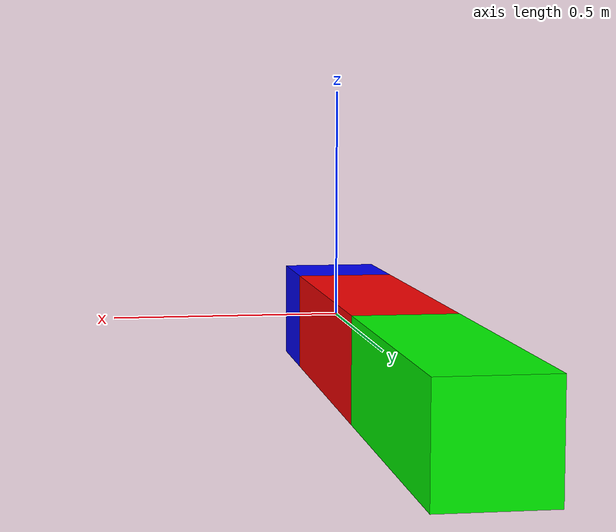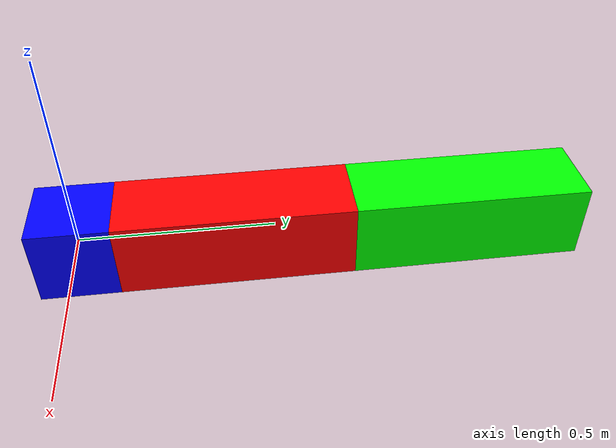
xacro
<?xml version="1.0"?>
<robot xmlns:xacro="http://www.ros.org/wiki/xacro" name="simple_robot">

    <material name="bright_red">
        <color rgba="1.0 0.0 0.0 1.0"/>
    </material>

    <material name="bright_green">
        <color rgba="0.0 1.0 0.0 1.0"/>
    </material>

    <material name="bright_blue">
        <color rgba="0.0 0.0 1.0 1.0"/>
    </material>

    <link name="base_link">
        <visual>
            <origin xyz="0 0 0" rpy="0 0 0"/>
            <geometry>
                <!-- cylinder radius="0.2" length="0.05"/ -->
                <box size="0.2 0.2 0.2"/>
            </geometry>
            <material name="bright_blue"/>
        </visual>
    </link>

    <!-- a zero size intermediate link -->
    <link name="moving_dummy_link">
    </link>

    <link name="moving_link">
        <visual>
            <origin xyz="0 0.3 0" rpy="0 0 0"/>
            <geometry>
                <box size="0.2 0.6 0.2"/>
            </geometry>
            <material name="bright_red"/>
        </visual>
    </link>

    <!-- a zero size intermediate link -->
    <link name="moving_dummy_link2">
    </link>

    <link name="moving_link2">
        <visual>
            <origin xyz="0 0.3 0" rpy="0 0 0"/>
            <geometry>
                <box size="0.2 0.6 0.2"/>
            </geometry>
            <material name="bright_green"/>
        </visual>
    </link>

    <joint name="joint_1_x" type="revolute">
        <parent link="base_link"/>
        <child link="moving_dummy_link"/>
        <origin xyz="0 0.1 0" rpy="0 0 0"/>
        <axis xyz="1 0 0"/>
        <limit lower="-3.14" upper="3.14" effort="10.0" velocity="1.0"/>
    </joint>

    <joint name="joint_1_z" type="revolute">
        <parent link="moving_dummy_link"/>
        <child link="moving_link"/>
        <origin xyz="0 0 0" rpy="0 0 0"/>
        <axis xyz="0 0 1"/>
        <limit lower="-3.14" upper="3.14" effort="10.0" velocity="1.0"/>
    </joint>

    <joint name="joint_2_x" type="revolute">
        <parent link="moving_link"/>
        <child link="moving_dummy_link2"/>
        <origin xyz="0 0.6 0" rpy="0 0 0"/>
        <axis xyz="1 0 0"/>
        <limit lower="-3.14" upper="3.14" effort="10.0" velocity="1.0"/>
    </joint>

    <joint name="joint_2_z" type="revolute">
        <parent link="moving_dummy_link2"/>
        <child link="moving_link2"/>
        <origin xyz="0 0 0" rpy="0 0 0"/>
        <axis xyz="0 0 1"/>
        <limit lower="-3.14" upper="3.14" effort="10.0" velocity="1.0"/>
    </joint>

    <ros2_control name="MockHardware" type="system">
        <hardware>
            <plugin>mock_components/GenericSystem</plugin>
            <param name="calculate_dynamics">true</param>
        </hardware>

        <joint name="joint_1_x">
            <command_interface name="position">
                <param name="min">-3.14</param>
                <param name="max">3.14</param>
            </command_interface>
            <state_interface name="position">
                <param name="initial_value">0.0</param>
            </state_interface>
            <state_interface name="velocity"/>
        </joint>

        <joint name="joint_1_z">
            <command_interface name="position">
                <param name="min">-3.14</param>
                <param name="max">3.14</param>
            </command_interface>
            <state_interface name="position">
                <param name="initial_value">0.0</param>
            </state_interface>
            <state_interface name="velocity"/>
        </joint>

        <joint name="joint_2_x">
            <command_interface name="position">
                <param name="min">-3.14</param>
                <param name="max">3.14</param>
            </command_interface>
            <state_interface name="position">
                <param name="initial_value">0.0</param>
            </state_interface>
            <state_interface name="velocity"/>
        </joint>

        <joint name="joint_2_z">
            <command_interface name="position">
                <param name="min">-3.14</param>
                <param name="max">3.14</param>
            </command_interface>
            <state_interface name="position">
                <param name="initial_value">0.0</param>
            </state_interface>
            <state_interface name="velocity"/>
        </joint>
    </ros2_control>

</robot>
